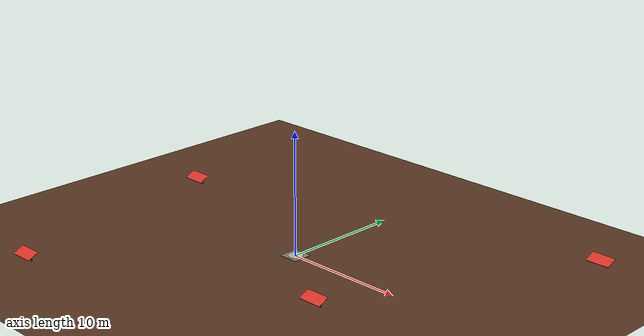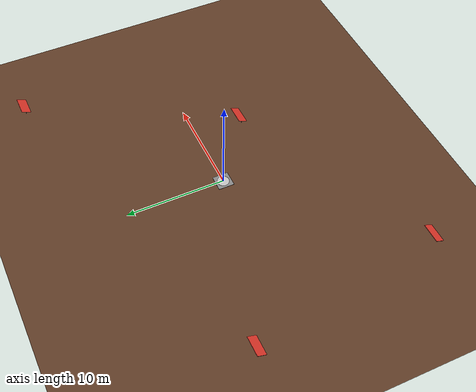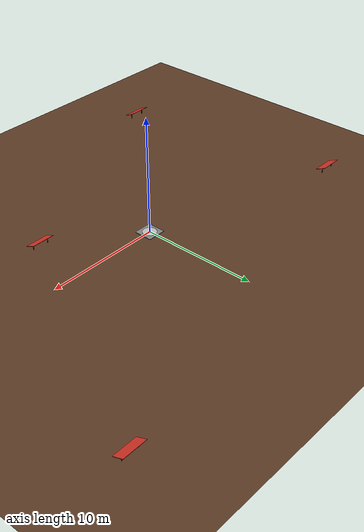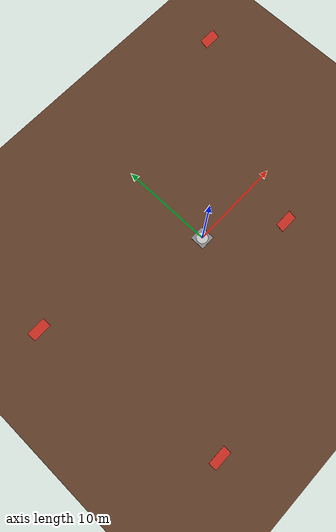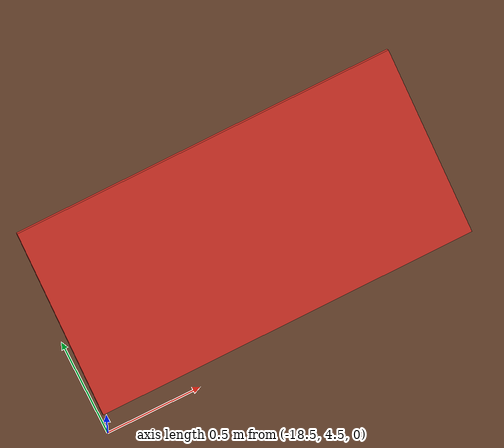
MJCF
<mujoco model="solar_field">
  <compiler angle="radian"/>
  <worldbody>
    <geom name="ground" type="plane" size="80 80 0.1" rgba="0.35 0.22 0.14 1"/>
    <geom name="home_pad" type="box" size="0.8 0.8 0.02" pos="0 0 0.01" rgba="0.5 0.5 0.5 1"/>
    <geom name="home_pad_H" type="cylinder" size="0.6 0.003" pos="0 0 0.03" rgba="1 1 1 0.5"/>
    <body name="panel_8_13" pos="17.50 15.00 0.5">
      <geom name="panel_8_13_body" type="box" size="1.00 0.50 0.015" pos="0 0 0" euler="0.4363 0 0" rgba="0.85 0.2 0.15 1"/>
      <geom name="panel_8_13_post_l" type="cylinder" size="0.03 0.25" pos="-0.70 0 -0.25" rgba="0.3 0.3 0.3 1"/>
      <geom name="panel_8_13_post_r" type="cylinder" size="0.03 0.25" pos="0.70 0 -0.25" rgba="0.3 0.3 0.3 1"/>
    </body>
    <body name="panel_4_10" pos="7.00 -5.00 0.5">
      <geom name="panel_4_10_body" type="box" size="1.00 0.50 0.015" pos="0 0 0" euler="0.4363 0 0" rgba="0.85 0.2 0.15 1"/>
      <geom name="panel_4_10_post_l" type="cylinder" size="0.03 0.25" pos="-0.70 0 -0.25" rgba="0.3 0.3 0.3 1"/>
      <geom name="panel_4_10_post_r" type="cylinder" size="0.03 0.25" pos="0.70 0 -0.25" rgba="0.3 0.3 0.3 1"/>
    </body>
    <body name="panel_2_4" pos="-14.00 -15.00 0.5">
      <geom name="panel_2_4_body" type="box" size="1.00 0.50 0.015" pos="0 0 0" euler="0.4363 0 0" rgba="0.85 0.2 0.15 1"/>
      <geom name="panel_2_4_post_l" type="cylinder" size="0.03 0.25" pos="-0.70 0 -0.25" rgba="0.3 0.3 0.3 1"/>
      <geom name="panel_2_4_post_r" type="cylinder" size="0.03 0.25" pos="0.70 0 -0.25" rgba="0.3 0.3 0.3 1"/>
    </body>
    <body name="panel_6_3" pos="-17.50 5.00 0.5">
      <geom name="panel_6_3_body" type="box" size="1.00 0.50 0.015" pos="0 0 0" euler="0.4363 0 0" rgba="0.85 0.2 0.15 1"/>
      <geom name="panel_6_3_post_l" type="cylinder" size="0.03 0.25" pos="-0.70 0 -0.25" rgba="0.3 0.3 0.3 1"/>
      <geom name="panel_6_3_post_r" type="cylinder" size="0.03 0.25" pos="0.70 0 -0.25" rgba="0.3 0.3 0.3 1"/>
    </body>
  </worldbody>
</mujoco>
